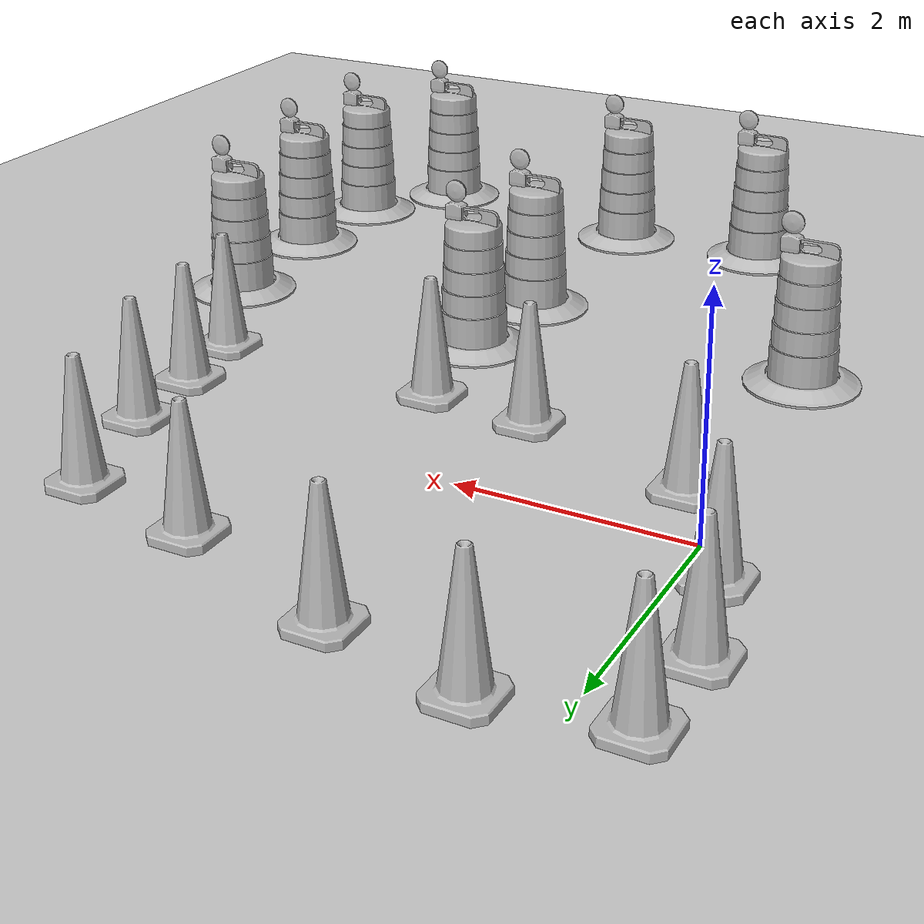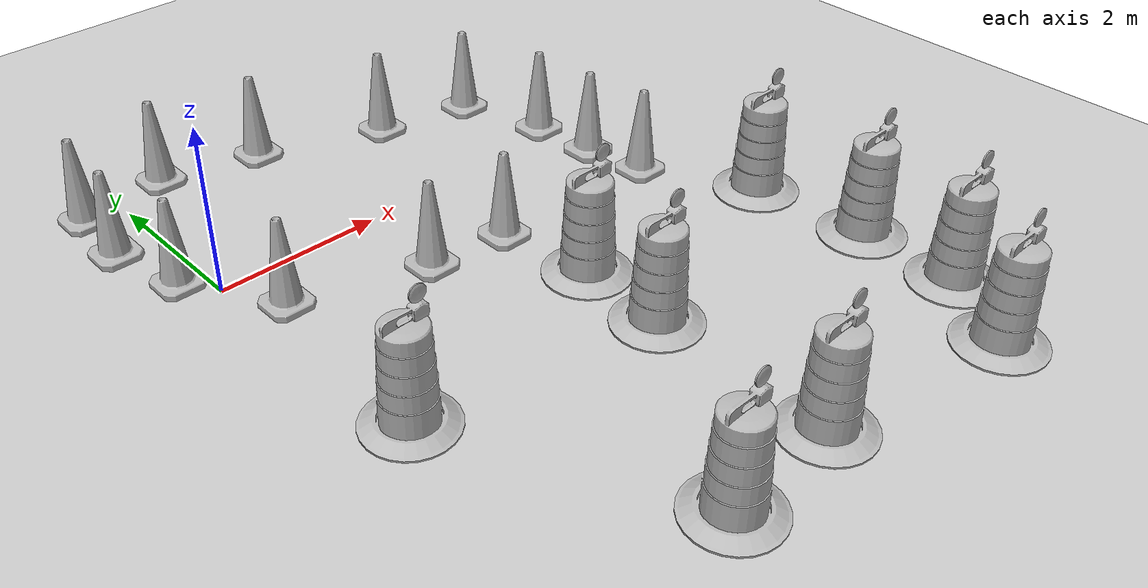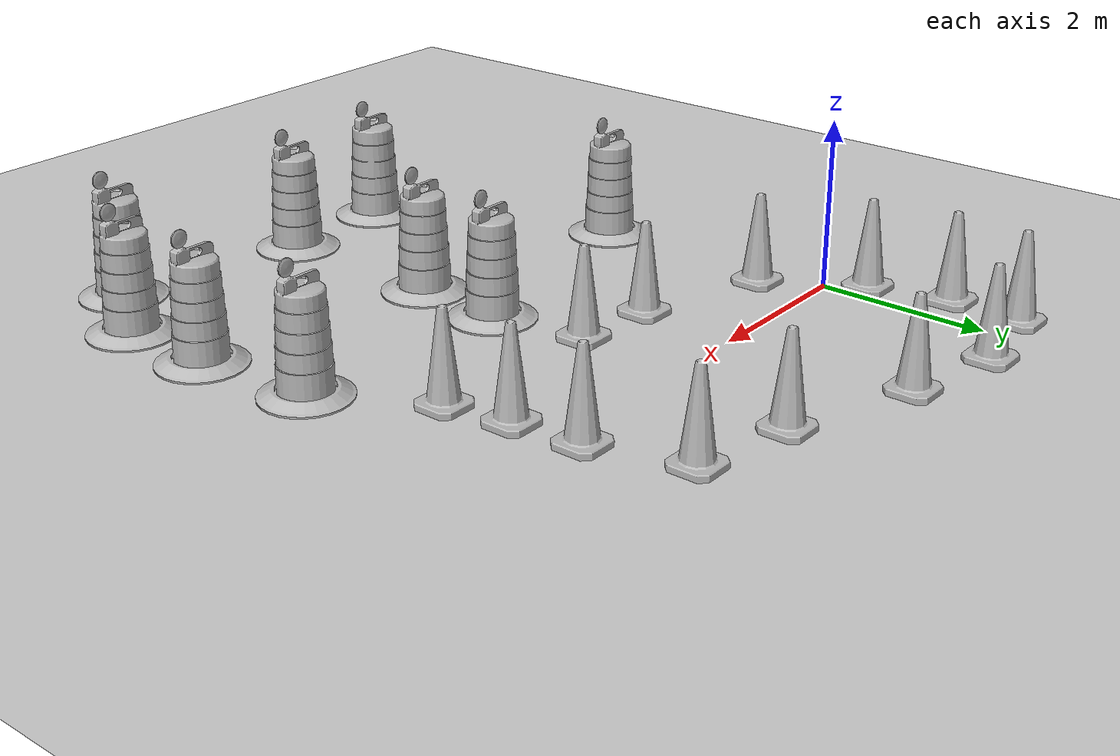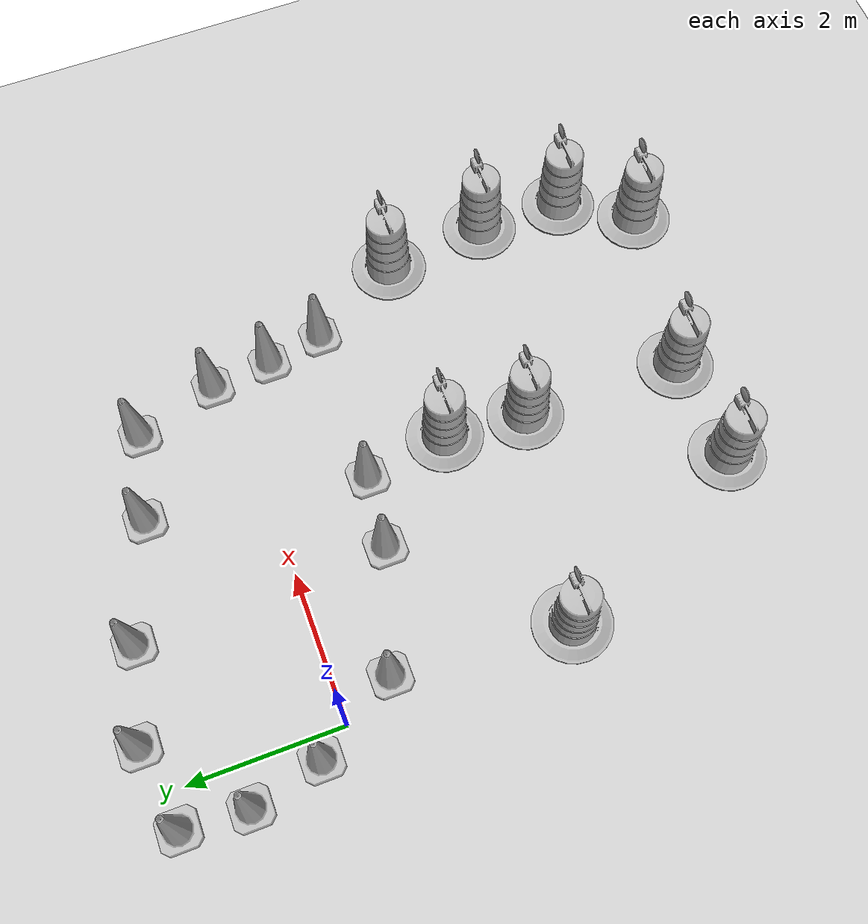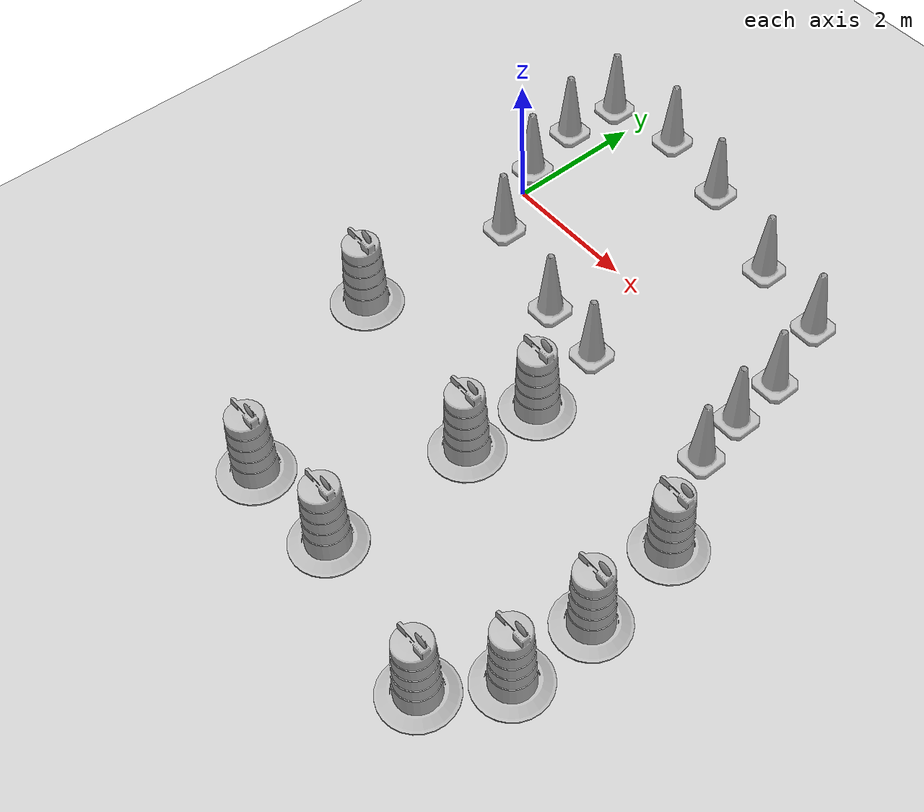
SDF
<sdf version="1.7">
 <world name="default">
  <light name="sun" type="directional">
   <pose>0 0 10 0 -0 0</pose>
   <diffuse>0.8 0.8 0.8 1</diffuse>
   <specular>0.2 0.2 0.2 1</specular>
   <attenuation>
    <range>1000</range>
    <constant>0.9</constant>
    <linear>0.01</linear>
    <quadratic>0.001</quadratic>
   </attenuation>
   <direction>-0.5 0.1 -0.9</direction>
   <spot><inner_angle>0</inner_angle><outer_angle>0</outer_angle><falloff>0</falloff></spot>
  </light>
  <model name="ground_plane">
   <static>1</static>
   <link name="link">
    <collision name="collision">
     <geometry><plane><normal>0 0 1</normal><size>100 100</size></plane></geometry>
     <surface>
      <contact><collide_bitmask>65535</collide_bitmask></contact>
      <friction><ode><mu>100</mu><mu2>50</mu2></ode></friction>
     </surface>
    </collision>
    <visual name="visual">
     <cast_shadows>0</cast_shadows>
     <geometry><plane><normal>0 0 1</normal><size>100 100</size></plane></geometry>
     <material>
      <script><uri>file://media/materials/scripts/gazebo.material</uri><name>Gazebo/Grey</name></script>
     </material>
    </visual>
   </link>
  </model>
  <gravity>0 0 -9.8</gravity>
  <magnetic_field>6e-06 2.3e-05 -4.2e-05</magnetic_field>
  <atmosphere type="adiabatic"/>
  <physics type="ode">
   <max_step_size>0.001</max_step_size>
   <real_time_factor>1</real_time_factor>
   <real_time_update_rate>1000</real_time_update_rate>
  </physics>
  <scene><ambient>0.4 0.4 0.4 1</ambient><background>0.7 0.7 0.7 1</background><shadows>1</shadows></scene>
  <audio><device>default</device></audio>
  <spherical_coordinates>
   <surface_model>EARTH_WGS84</surface_model>
   <latitude_deg>0</latitude_deg>
   <longitude_deg>0</longitude_deg>
   <elevation>0</elevation>
   <heading_deg>0</heading_deg>
  </spherical_coordinates>
  <light name="sun" type="directional">
   <pose>24.7808 -12.6585 10 0 -0 0</pose>
   <diffuse>0.8 0.8 0.8 1</diffuse>
   <specular>0.2 0.2 0.2 1</specular>
   <attenuation>
    <range>1000</range>
    <constant>0.9</constant>
    <linear>0.01</linear>
    <quadratic>0.001</quadratic>
   </attenuation>
   <direction>-0.5 0.1 -0.9</direction>
  </light>
  <model name="Construction Cone">
   <link name="link">
    <collision name="collision">
     <geometry>
      <mesh><scale>10 10 10</scale><uri>model://construction_cone/meshes/construction_cone.dae</uri></mesh>
     </geometry>
    </collision>
    <visual name="visual">
     <geometry>
      <mesh><scale>10 10 10</scale><uri>model://construction_cone/meshes/construction_cone.dae</uri></mesh>
     </geometry>
    </visual>
    <inertial>
     <inertia><ixx>1</ixx><ixy>0</ixy><ixz>0</ixz><iyy>1</iyy><iyz>0</iyz><izz>1</izz></inertia>
     <mass>1</mass>
    </inertial>
   </link>
   <pose>0.382017 -0.674896 -0 0 -0 0</pose>
  </model>
  <model name="Construction Cone_clone">
   <link name="link">
    <collision name="collision">
     <geometry>
      <mesh><scale>10 10 10</scale><uri>model://construction_cone/meshes/construction_cone.dae</uri></mesh>
     </geometry>
    </collision>
    <visual name="visual">
     <geometry>
      <mesh><scale>10 10 10</scale><uri>model://construction_cone/meshes/construction_cone.dae</uri></mesh>
     </geometry>
    </visual>
    <inertial>
     <inertia><ixx>1</ixx><ixy>0</ixy><ixz>0</ixz><iyy>1</iyy><iyz>0</iyz><izz>1</izz></inertia>
     <mass>1</mass>
    </inertial>
   </link>
   <pose>-0.274611 0.413139 -0 0 -0 0</pose>
  </model>
  <model name="Construction Cone_clone_0">
   <link name="link">
    <collision name="collision">
     <geometry>
      <mesh><scale>10 10 10</scale><uri>model://construction_cone/meshes/construction_cone.dae</uri></mesh>
     </geometry>
    </collision>
    <visual name="visual">
     <geometry>
      <mesh><scale>10 10 10</scale><uri>model://construction_cone/meshes/construction_cone.dae</uri></mesh>
     </geometry>
    </visual>
    <inertial>
     <inertia><ixx>1</ixx><ixy>0</ixy><ixz>0</ixz><iyy>1</iyy><iyz>0</iyz><izz>1</izz></inertia>
     <mass>1</mass>
    </inertial>
   </link>
   <pose>-0.510945 1.34799 -0 1e-06 -0 0</pose>
  </model>
  <model name="Construction Cone_clone_1">
   <link name="link">
    <collision name="collision">
     <geometry>
      <mesh><scale>10 10 10</scale><uri>model://construction_cone/meshes/construction_cone.dae</uri></mesh>
     </geometry>
    </collision>
    <visual name="visual">
     <geometry>
      <mesh><scale>10 10 10</scale><uri>model://construction_cone/meshes/construction_cone.dae</uri></mesh>
     </geometry>
    </visual>
    <inertial>
     <inertia><ixx>1</ixx><ixy>0</ixy><ixz>0</ixz><iyy>1</iyy><iyz>0</iyz><izz>1</izz></inertia>
     <mass>1</mass>
    </inertial>
   </link>
   <pose>-0.451326 2.19818 0 -0 -0 -0</pose>
  </model>
  <model name="Construction Cone_clone_2">
   <link name="link">
    <collision name="collision">
     <geometry>
      <mesh><scale>10 10 10</scale><uri>model://construction_cone/meshes/construction_cone.dae</uri></mesh>
     </geometry>
    </collision>
    <visual name="visual">
     <geometry>
      <mesh><scale>10 10 10</scale><uri>model://construction_cone/meshes/construction_cone.dae</uri></mesh>
     </geometry>
    </visual>
    <inertial>
     <inertia><ixx>1</ixx><ixy>0</ixy><ixz>0</ixz><iyy>1</iyy><iyz>0</iyz><izz>1</izz></inertia>
     <mass>1</mass>
    </inertial>
   </link>
   <pose>0.626276 2.37517 -0 0 -0 0</pose>
  </model>
  <model name="Construction Cone_clone_3">
   <link name="link">
    <collision name="collision">
     <geometry>
      <mesh><scale>10 10 10</scale><uri>model://construction_cone/meshes/construction_cone.dae</uri></mesh>
     </geometry>
    </collision>
    <visual name="visual">
     <geometry>
      <mesh><scale>10 10 10</scale><uri>model://construction_cone/meshes/construction_cone.dae</uri></mesh>
     </geometry>
    </visual>
    <inertial>
     <inertia><ixx>1</ixx><ixy>0</ixy><ixz>0</ixz><iyy>1</iyy><iyz>0</iyz><izz>1</izz></inertia>
     <mass>1</mass>
    </inertial>
   </link>
   <pose>1.82125 2.10494 -0 0 -0 0</pose>
  </model>
  <model name="Construction Cone_clone_4">
   <link name="link">
    <collision name="collision">
     <geometry>
      <mesh><scale>10 10 10</scale><uri>model://construction_cone/meshes/construction_cone.dae</uri></mesh>
     </geometry>
    </collision>
    <visual name="visual">
     <geometry>
      <mesh><scale>10 10 10</scale><uri>model://construction_cone/meshes/construction_cone.dae</uri></mesh>
     </geometry>
    </visual>
    <inertial>
     <inertia><ixx>1</ixx><ixy>0</ixy><ixz>0</ixz><iyy>1</iyy><iyz>0</iyz><izz>1</izz></inertia>
     <mass>1</mass>
    </inertial>
   </link>
   <pose>1.93952 -1.16583 0 -0 -0 -0</pose>
  </model>
  <model name="Construction Cone_clone_5">
   <link name="link">
    <collision name="collision">
     <geometry>
      <mesh><scale>10 10 10</scale><uri>model://construction_cone/meshes/construction_cone.dae</uri></mesh>
     </geometry>
    </collision>
    <visual name="visual">
     <geometry>
      <mesh><scale>10 10 10</scale><uri>model://construction_cone/meshes/construction_cone.dae</uri></mesh>
     </geometry>
    </visual>
    <inertial>
     <inertia><ixx>1</ixx><ixy>0</ixy><ixz>0</ixz><iyy>1</iyy><iyz>0</iyz><izz>1</izz></inertia>
     <mass>1</mass>
    </inertial>
   </link>
   <pose>2.90392 -1.27128 -3e-06 -4e-06 -1e-06 0</pose>
  </model>
  <model name="Construction Cone_clone_6">
   <link name="link">
    <collision name="collision">
     <geometry>
      <mesh><scale>10 10 10</scale><uri>model://construction_cone/meshes/construction_cone.dae</uri></mesh>
     </geometry>
    </collision>
    <visual name="visual">
     <geometry>
      <mesh><scale>10 10 10</scale><uri>model://construction_cone/meshes/construction_cone.dae</uri></mesh>
     </geometry>
    </visual>
    <inertial>
     <inertia><ixx>1</ixx><ixy>0</ixy><ixz>0</ixz><iyy>1</iyy><iyz>0</iyz><izz>1</izz></inertia>
     <mass>1</mass>
    </inertial>
   </link>
   <pose>3.32819 1.55571 -0 0 -0 0</pose>
  </model>
  <model name="Construction Cone_clone_7">
   <link name="link">
    <collision name="collision">
     <geometry>
      <mesh><scale>10 10 10</scale><uri>model://construction_cone/meshes/construction_cone.dae</uri></mesh>
     </geometry>
    </collision>
    <visual name="visual">
     <geometry>
      <mesh><scale>10 10 10</scale><uri>model://construction_cone/meshes/construction_cone.dae</uri></mesh>
     </geometry>
    </visual>
    <inertial>
     <inertia><ixx>1</ixx><ixy>0</ixy><ixz>0</ixz><iyy>1</iyy><iyz>0</iyz><izz>1</izz></inertia>
     <mass>1</mass>
    </inertial>
   </link>
   <pose>4.48953 1.30473 0 -0 -0 -0</pose>
  </model>
  <model name="Construction Cone_clone_8">
   <link name="link">
    <collision name="collision">
     <geometry>
      <mesh><scale>10 10 10</scale><uri>model://construction_cone/meshes/construction_cone.dae</uri></mesh>
     </geometry>
    </collision>
    <visual name="visual">
     <geometry>
      <mesh><scale>10 10 10</scale><uri>model://construction_cone/meshes/construction_cone.dae</uri></mesh>
     </geometry>
    </visual>
    <inertial>
     <inertia><ixx>1</ixx><ixy>0</ixy><ixz>0</ixz><iyy>1</iyy><iyz>0</iyz><izz>1</izz></inertia>
     <mass>1</mass>
    </inertial>
   </link>
   <pose>4.82942 0.220742 -0 0 -0 0</pose>
  </model>
  <model name="Construction Cone_clone_9">
   <link name="link">
    <collision name="collision">
     <geometry>
      <mesh><scale>10 10 10</scale><uri>model://construction_cone/meshes/construction_cone.dae</uri></mesh>
     </geometry>
    </collision>
    <visual name="visual">
     <geometry>
      <mesh><scale>10 10 10</scale><uri>model://construction_cone/meshes/construction_cone.dae</uri></mesh>
     </geometry>
    </visual>
    <inertial>
     <inertia><ixx>1</ixx><ixy>0</ixy><ixz>0</ixz><iyy>1</iyy><iyz>0</iyz><izz>1</izz></inertia>
     <mass>1</mass>
    </inertial>
   </link>
   <pose>4.91461 -0.587684 -0 0 -0 0</pose>
  </model>
  <model name="Construction Cone_clone_10">
   <link name="link">
    <collision name="collision">
     <geometry>
      <mesh><scale>10 10 10</scale><uri>model://construction_cone/meshes/construction_cone.dae</uri></mesh>
     </geometry>
    </collision>
    <visual name="visual">
     <geometry>
      <mesh><scale>10 10 10</scale><uri>model://construction_cone/meshes/construction_cone.dae</uri></mesh>
     </geometry>
    </visual>
    <inertial>
     <inertia><ixx>1</ixx><ixy>0</ixy><ixz>0</ixz><iyy>1</iyy><iyz>0</iyz><izz>1</izz></inertia>
     <mass>1</mass>
    </inertial>
   </link>
   <pose>5.05599 -1.34222 -0 0 -0 0</pose>
  </model>
  <model name="Construction Barrel">
   <link name="link">
    <inertial>
     <pose>0 0 0.4 0 -0 0</pose>
     <mass>500</mass>
     <inertia><ixx>51.2096</ixx><iyy>51.2096</iyy><izz>25</izz><ixy>0</ixy><ixz>0</ixz><iyz>0</iyz></inertia>
    </inertial>
    <collision name="collision">
     <geometry><mesh><uri>model://construction_barrel/meshes/construction_barrel.dae</uri></mesh></geometry>
    </collision>
    <visual name="visual">
     <geometry><mesh><uri>model://construction_barrel/meshes/construction_barrel.dae</uri></mesh></geometry>
    </visual>
   </link>
   <pose>3.10323 -2.399 0 1e-06 1e-06 -2e-05</pose>
  </model>
  <model name="Construction Barrel_clone">
   <link name="link">
    <inertial>
     <pose>0 0 0.4 0 -0 0</pose>
     <mass>500</mass>
     <inertia><ixx>51.2096</ixx><iyy>51.2096</iyy><izz>25</izz><ixy>0</ixy><ixz>0</ixz><iyz>0</iyz></inertia>
    </inertial>
    <collision name="collision">
     <geometry><mesh><uri>model://construction_barrel/meshes/construction_barrel.dae</uri></mesh></geometry>
    </collision>
    <visual name="visual">
     <geometry><mesh><uri>model://construction_barrel/meshes/construction_barrel.dae</uri></mesh></geometry>
    </visual>
   </link>
   <pose>5.75646 -2.57736 -1e-06 1e-06 -9e-06 -1.9e-05</pose>
  </model>
  <model name="Construction Barrel_clone_0">
   <link name="link">
    <inertial>
     <pose>0 0 0.4 0 -0 0</pose>
     <mass>500</mass>
     <inertia><ixx>51.2096</ixx><iyy>51.2096</iyy><izz>25</izz><ixy>0</ixy><ixz>0</ixz><iyz>0</iyz></inertia>
    </inertial>
    <collision name="collision">
     <geometry><mesh><uri>model://construction_barrel/meshes/construction_barrel.dae</uri></mesh></geometry>
    </collision>
    <visual name="visual">
     <geometry><mesh><uri>model://construction_barrel/meshes/construction_barrel.dae</uri></mesh></geometry>
    </visual>
   </link>
   <pose>3.0236 -3.4975 -0 0 0 -1.8e-05</pose>
  </model>
  <model name="Construction Barrel_clone_1">
   <link name="link">
    <inertial>
     <pose>0 0 0.4 0 -0 0</pose>
     <mass>500</mass>
     <inertia><ixx>51.2096</ixx><iyy>51.2096</iyy><izz>25</izz><ixy>0</ixy><ixz>0</ixz><iyz>0</iyz></inertia>
    </inertial>
    <collision name="collision">
     <geometry><mesh><uri>model://construction_barrel/meshes/construction_barrel.dae</uri></mesh></geometry>
    </collision>
    <visual name="visual">
     <geometry><mesh><uri>model://construction_barrel/meshes/construction_barrel.dae</uri></mesh></geometry>
    </visual>
   </link>
   <pose>5.91608 -3.97921 -1e-06 3e-06 -2e-06 -1.6e-05</pose>
  </model>
  <model name="Construction Barrel_clone_2">
   <link name="link">
    <inertial>
     <pose>0 0 0.4 0 -0 0</pose>
     <mass>500</mass>
     <inertia><ixx>51.2096</ixx><iyy>51.2096</iyy><izz>25</izz><ixy>0</ixy><ixz>0</ixz><iyz>0</iyz></inertia>
    </inertial>
    <collision name="collision">
     <geometry><mesh><uri>model://construction_barrel/meshes/construction_barrel.dae</uri></mesh></geometry>
    </collision>
    <visual name="visual">
     <geometry><mesh><uri>model://construction_barrel/meshes/construction_barrel.dae</uri></mesh></geometry>
    </visual>
   </link>
   <pose>0.210083 -2.97416 -2e-06 -7e-06 4e-06 -1.5e-05</pose>
  </model>
  <model name="Construction Barrel_clone_3">
   <link name="link">
    <inertial>
     <pose>0 0 0.4 0 -0 0</pose>
     <mass>500</mass>
     <inertia><ixx>51.2096</ixx><iyy>51.2096</iyy><izz>25</izz><ixy>0</ixy><ixz>0</ixz><iyz>0</iyz></inertia>
    </inertial>
    <collision name="collision">
     <geometry><mesh><uri>model://construction_barrel/meshes/construction_barrel.dae</uri></mesh></geometry>
    </collision>
    <visual name="visual">
     <geometry><mesh><uri>model://construction_barrel/meshes/construction_barrel.dae</uri></mesh></geometry>
    </visual>
   </link>
   <pose>5.89111 -5.16319 1e-06 2e-06 3e-06 -1.4e-05</pose>
  </model>
  <model name="Construction Barrel_clone_4">
   <link name="link">
    <inertial>
     <pose>0 0 0.4 0 -0 0</pose>
     <mass>500</mass>
     <inertia><ixx>51.2096</ixx><iyy>51.2096</iyy><izz>25</izz><ixy>0</ixy><ixz>0</ixz><iyz>0</iyz></inertia>
    </inertial>
    <collision name="collision">
     <geometry><mesh><uri>model://construction_barrel/meshes/construction_barrel.dae</uri></mesh></geometry>
    </collision>
    <visual name="visual">
     <geometry><mesh><uri>model://construction_barrel/meshes/construction_barrel.dae</uri></mesh></geometry>
    </visual>
   </link>
   <pose>5.3059 -6.06733 -1e-06 4e-06 -2e-06 -1.1e-05</pose>
  </model>
  <model name="Construction Barrel_clone_5">
   <link name="link">
    <inertial>
     <pose>0 0 0.4 0 -0 0</pose>
     <mass>500</mass>
     <inertia><ixx>51.2096</ixx><iyy>51.2096</iyy><izz>25</izz><ixy>0</ixy><ixz>0</ixz><iyz>0</iyz></inertia>
    </inertial>
    <collision name="collision">
     <geometry><mesh><uri>model://construction_barrel/meshes/construction_barrel.dae</uri></mesh></geometry>
    </collision>
    <visual name="visual">
     <geometry><mesh><uri>model://construction_barrel/meshes/construction_barrel.dae</uri></mesh></geometry>
    </visual>
   </link>
   <pose>2.99818 -5.64589 -1e-06 3e-06 -2e-06 -1.1e-05</pose>
  </model>
  <model name="Construction Barrel_clone_6">
   <link name="link">
    <inertial>
     <pose>0 0 0.4 0 -0 0</pose>
     <mass>500</mass>
     <inertia><ixx>51.2096</ixx><iyy>51.2096</iyy><izz>25</izz><ixy>0</ixy><ixz>0</ixz><iyz>0</iyz></inertia>
    </inertial>
    <collision name="collision">
     <geometry><mesh><uri>model://construction_barrel/meshes/construction_barrel.dae</uri></mesh></geometry>
    </collision>
    <visual name="visual">
     <geometry><mesh><uri>model://construction_barrel/meshes/construction_barrel.dae</uri></mesh></geometry>
    </visual>
   </link>
   <pose>1.56888 -5.72285 -3e-06 -4e-06 -4e-06 -7e-06</pose>
  </model>
 </world>
</sdf>
